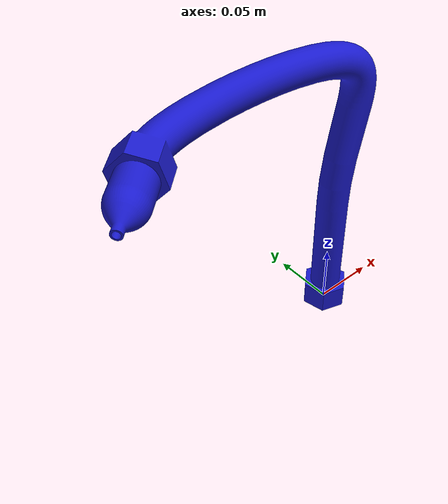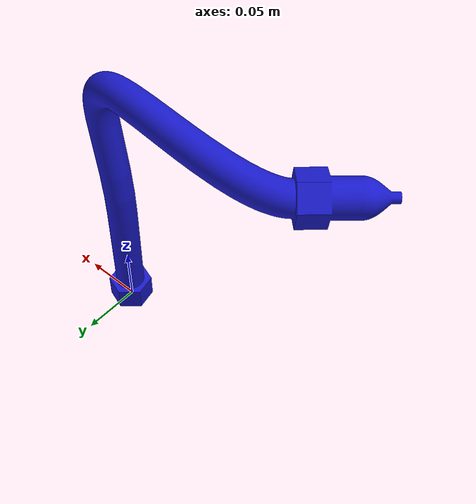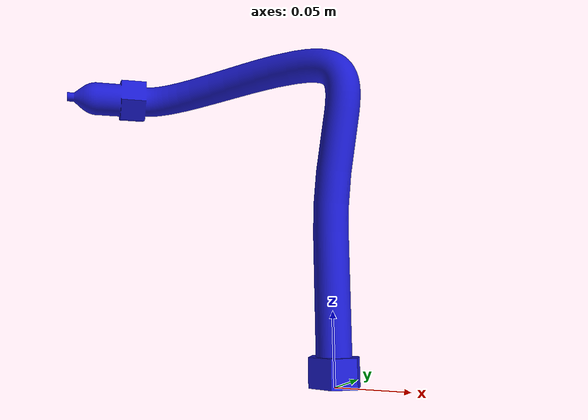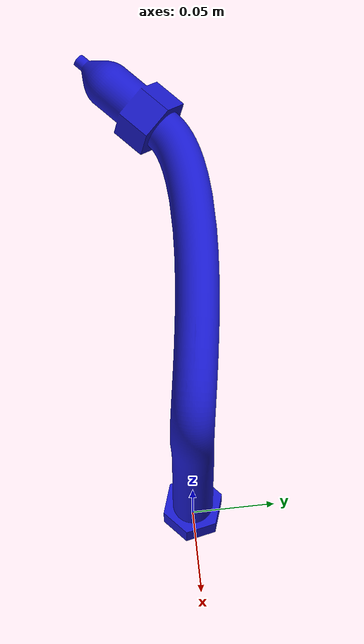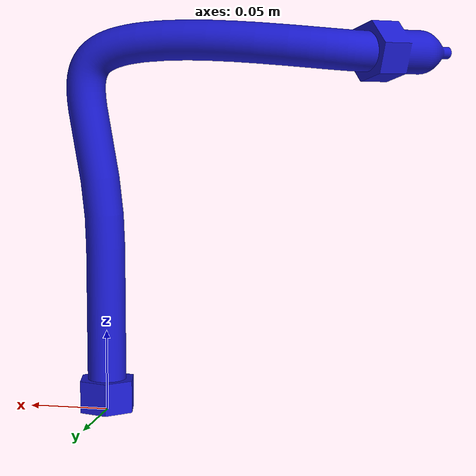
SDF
<?xml version="1.0" ?>
<sdf version="1.0">
  <model name="3d_fuel_line">
    <link name="link">
      <inertial>
        <pose>-0.050755 0.000204 0.153613 0 0 0</pose>
        <mass>0.4</mass>
        <inertia>
          <ixx>0.00297608172837544</ixx>
          <ixy>-0.0000525745196449047</ixy>
          <ixz>0.00145735240836997</ixz>
          <iyy>0.00490852227619451</iyy>
          <iyz>-0.0000132696088618256</iyz>
          <izz>0.00203258727298015</izz>
        </inertia>
      </inertial>
      <collision name="collision">
        <pose>0 0 0 0 0 0</pose>
        <geometry>
          <mesh>
            <uri>model://3d_fuel_line2/Fuel-line2_004x.stl</uri>
          </mesh>
        </geometry>
        <surface>
          <friction>
            <ode>
              <mu>100000.0</mu>
              <mu2>100000.0</mu2>
            </ode>
          </friction>
          <contact>
            <ode>
              <kp>1000000.0</kp>
              <kd>1000000.0</kd>
              <min_depth>0.001</min_depth>
              <max_vel>0</max_vel>
            </ode>
          </contact>
        </surface>
      </collision>
      <visual name="visual">
        <pose>0 0 0 0 0 0</pose>
        <geometry>
          <mesh>
            <uri>model://3d_fuel_line2/Fuel-line2_004x.stl</uri>
          </mesh>
        </geometry>
<material>
          <ambient>0.1 0.1 0.8 1</ambient>
          <diffuse>0.1 0.1 0.8 1</diffuse>
          <specular>0.01 0.01 0.01 1</specular>
          <emissive>0 0 0 1</emissive>
          <shader type='vertex'>
            <normal_map>__default__</normal_map>
          </shader>
        </material>
        <cast_shadows>1</cast_shadows>
        <transparency>0</transparency>
      </visual>
    </link>
<static>0</static>
    <allow_auto_disable>1</allow_auto_disable>
  </model>
</sdf>
